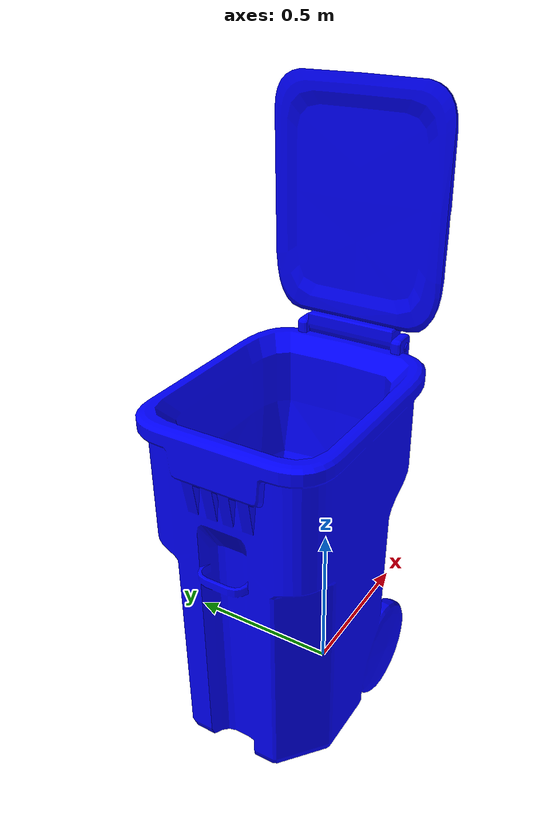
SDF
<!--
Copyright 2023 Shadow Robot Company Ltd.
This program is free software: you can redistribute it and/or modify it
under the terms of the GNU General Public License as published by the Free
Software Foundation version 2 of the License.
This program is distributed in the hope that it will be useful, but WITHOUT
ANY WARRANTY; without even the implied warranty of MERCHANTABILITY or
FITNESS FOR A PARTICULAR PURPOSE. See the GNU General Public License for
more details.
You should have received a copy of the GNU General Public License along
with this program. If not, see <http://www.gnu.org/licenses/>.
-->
<?xml version="1.0" ?>

<sdf version="1.4">
  <model name="trash_bin">
    <static>true</static>
    <link name="link">
      <inertial>
        <mass>1.0</mass>
      </inertial>
      <collision name="collision">
        <pose>0.0 0.0 0.0 0 0.0 0.0</pose>
        <geometry>
          <mesh>
            <uri>model://trash_bin/meshes/trash_bin.stl</uri>
          </mesh>
        </geometry>
      </collision>
      <visual name="visual">
        <pose>0.0 0.0 0.0 0 0.0 0.0</pose>
        <geometry>
          <mesh>
            <uri>model://trash_bin/meshes/trash_bin.stl</uri>
          </mesh>
        </geometry>
        <material>
          <ambient>0 0 1 1</ambient>
          <diffuse>0 0 1 1</diffuse>
          <specular>0.1 0.1 0.1 1</specular>
          <emissive>0 0 0 0</emissive>
        </material>
      </visual>
    </link>
  </model>
</sdf>
